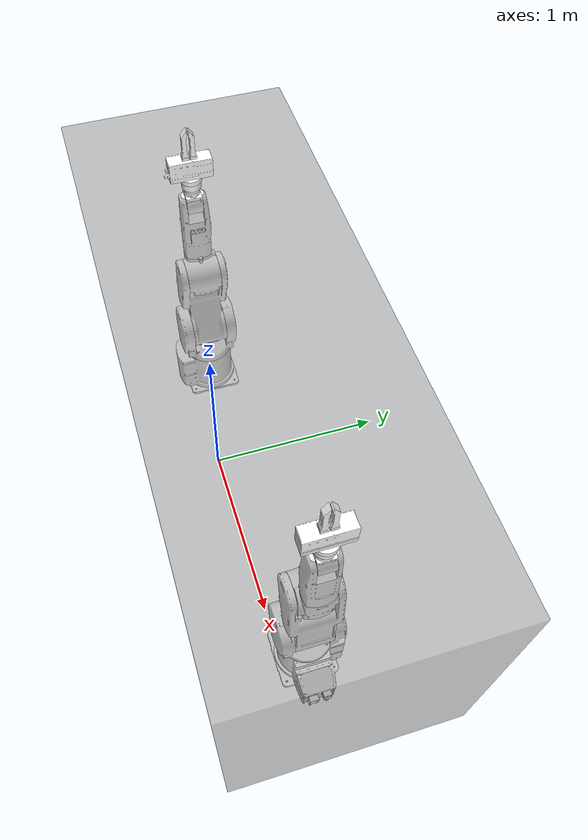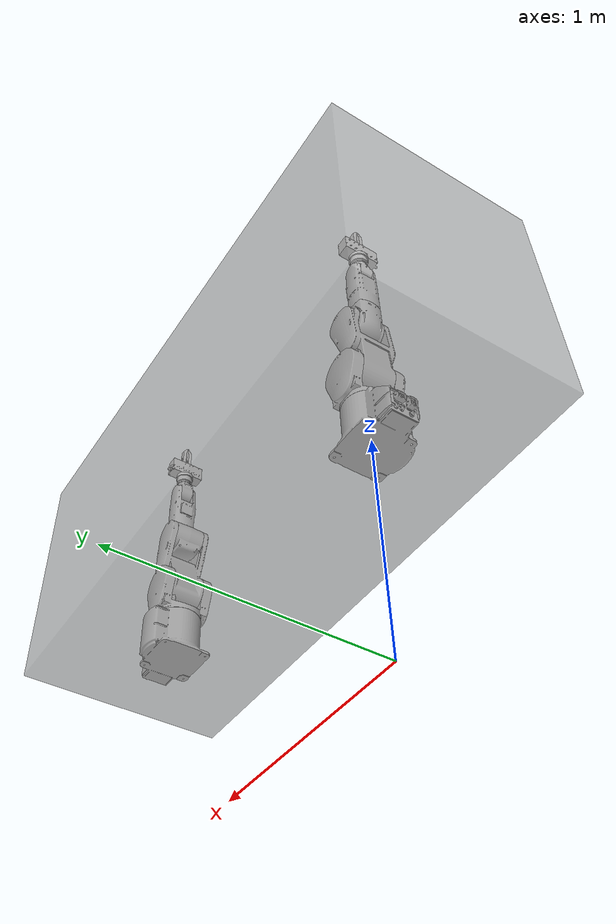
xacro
<?xml version="1.0" encoding="utf-8"?>
<robot xmlns:xacro="http://www.ros.org/wiki/xacro" name="rv7fm">
  <xacro:arg name="use_sim" default="false" />

  <!-- Enable setting arguments from the launch file -->
  <xacro:arg name="use_fake_hardware" default="false" />
  <xacro:arg name="fake_sensor_commands" default="false" />
  <xacro:arg name="prefix_1" default="melfa_1" /> <!-- Name of this rv7fm -->
  <xacro:arg name="prefix_2" default="melfa_2" /> <!-- Name of this rv7fm -->
  <xacro:arg name="slowdown" default="2.0" />
  <xacro:arg name="robot_ip_1" default="127.0.0.1" />
  <xacro:arg name="robot_ip_2" default="127.0.0.1" />
  <xacro:arg name="gripper_ip" default="127.0.0.1" />
  <xacro:arg name="hand" default="true" />
  <xacro:arg name="attached_object" default="true" />

  <material name="white">
    <color rgba="1.0 1.0 1.0 1.0" />
  </material>

  <material name="transparent">
    <color rgba="0.5 0.5 0.5 0.5" />
  </material>

  <xacro:include filename="$(find rv7fm_description)/urdf/rv7fm.xacro" />
  <xacro:include filename="$(find rv7fm_description)/urdf/hand.xacro" />
  <xacro:include filename="$(find rv7fm_description)/urdf/attached_object.xacro" />

  <!-- Import RV7FM ros2_control description -->
  <xacro:include filename="$(find rv7fm_description)/ros2_control/rv7fm_system_position_only.ros2_control.xacro" />
  <xacro:include filename="$(find rv7fm_description)/ros2_control/gripper_system_multi_interface.ros2_control.xacro" />

  <link name="base_link">
    <visual>
      <origin xyz="0 0 0.9445" rpy="0 0 0" />
      <geometry>
        <mesh filename="package://rv7fm_description/meshes/rv7fm/visual/cell_assembly.stl" />
      </geometry>
      <material name="transparent" />
    </visual>
    <collision>
      <origin xyz="0 0 0.9445" rpy="0 0 0" />
      <geometry>
        <mesh filename="package://rv7fm_description/meshes/rv7fm/collision/cell_assembly.stl" />
      </geometry>
      <material name="transparent" />
    </collision>
  </link>

  <!-- left arm with gripper -->
  <xacro:rv7fm arm_id="$(arg prefix_1)" connected_to="base_link" xyz="0 0 0.9445" safety_distance="0.03" />
  <xacro:hand ns="$(arg prefix_1)" rpy="0 0 0" connected_to="$(arg prefix_1)_link6" safety_distance="0.03" />

  <!-- right arm with gripper -->
  <xacro:rv7fm arm_id="$(arg prefix_2)" connected_to="base_link" xyz="1.540 0 0.9445" rpy="0 0 ${pi}" safety_distance="0.03" />
  <xacro:hand ns="$(arg prefix_2)" rpy="0 0 0" connected_to="$(arg prefix_2)_link6" safety_distance="0.03" />
  <xacro:unless value="$(arg attached_object)">
    <xacro:attached_object ns="$(arg prefix_2)" xyz="-0.22 0 0.1" rpy="1.5707963 0 0" connected_to="$(arg prefix_2)_gripper_tcp" />
  </xacro:unless>

  <xacro:rv7fm_system_position_only name="$(arg prefix_1)_RV7FMSystemPositionOnly" prefix="$(arg prefix_1)" use_fake_hardware="$(arg use_fake_hardware)" fake_sensor_commands="$(arg fake_sensor_commands)" slowdown="$(arg slowdown)" robot_ip="$(arg robot_ip_1)" />
  <xacro:rv7fm_system_position_only name="$(arg prefix_2)_RV7FMSystemPositionOnly" prefix="$(arg prefix_2)" use_fake_hardware="$(arg use_fake_hardware)" fake_sensor_commands="$(arg fake_sensor_commands)" slowdown="$(arg slowdown)" robot_ip="$(arg robot_ip_2)" />
  <xacro:gripper_system_multi_interface name="GripperSystemMultiInterface" prefix="$(arg prefix_1)" prefix_2="$(arg prefix_2)" use_fake_hardware="$(arg use_fake_hardware)" fake_sensor_commands="$(arg fake_sensor_commands)" slowdown="$(arg slowdown)" gripper_ip="$(arg gripper_ip)" />
</robot>

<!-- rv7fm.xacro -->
<!-- Copyright (C) 2021, Laboratory for Machine Tools and Production Engineering WZL -->
<robot xmlns:xacro="http://www.ros.org/wiki/xacro">
  <xacro:macro name="rv7fm" params="arm_id description_pkg:='rv7fm_description' connected_to:=^|'' xyz:=^|'0 0 0' rpy:=^|'0 0 0' safety_distance:=^|0">
    <xacro:unless value="${not connected_to}">
      <joint name="${arm_id}_joint_${connected_to}" type="fixed">
        <parent link="${connected_to}" />
        <child link="${arm_id}_link0" />
        <origin rpy="${rpy}" xyz="${xyz}" />
      </joint>
    </xacro:unless>
    <link name="${arm_id}_link0">
      <visual>
        <origin rpy="0 0 0" xyz="0 0 0" />
        <geometry>
          <mesh filename="package://rv7fm_description/meshes/rv7fm/visual/L0.stl" />
        </geometry>
        <material name="white" />
      </visual>
      <collision>
        <origin rpy="0 0 0" xyz="0 0 0" />
        <geometry>
          <mesh filename="package://rv7fm_description/meshes/rv7fm/collision/L0.stl" />
        </geometry>
      </collision>
    </link>

    <joint name="${arm_id}_joint1" type="revolute">
      <parent link="${arm_id}_link0" />
      <child link="${arm_id}_link1" />
      <origin xyz="0 0 0.4" rpy="0 0 0" />
      <axis xyz="0 0 1" />
      <dynamics damping="0.7" />
      <limit upper="${240*pi/180}" lower="${-240*pi/180}" effort="10" velocity="${360*pi*0.1/180}" />
    </joint>

    <link name="${arm_id}_link1">
      <visual>
        <origin rpy="0 0 0" xyz="0 0 0" />
        <geometry>
          <mesh filename="package://rv7fm_description/meshes/rv7fm/visual/L1.stl" />
        </geometry>
        <material name="white" />
      </visual>
      <collision>
        <origin rpy="0 0 0" xyz="0 0 0" />
        <geometry>
          <mesh filename="package://rv7fm_description/meshes/rv7fm/collision/L1.stl" />
        </geometry>
      </collision>
    </link>

    <joint name="${arm_id}_joint2" type="revolute">
      <parent link="${arm_id}_link1" />
      <child link="${arm_id}_link2" />
      <origin xyz="0 0 0" rpy="0 0 0" />
      <axis xyz="0 1 0" />
      <dynamics damping="0.7" />
      <limit upper="${125*pi/180}" lower="${-115*pi/180}" effort="10" velocity="${401*pi*0.1/180}" />
    </joint>

    <link name="${arm_id}_link2">
      <visual>
        <origin rpy="0 0 0" xyz="0 0 0" />
        <geometry>
          <mesh filename="package://rv7fm_description/meshes/rv7fm/visual/L2.stl" />
        </geometry>
        <material name="white" />
      </visual>
      <collision>
        <origin rpy="0 0 0" xyz="0 0 0" />
        <geometry>
          <mesh filename="package://rv7fm_description/meshes/rv7fm/collision/L2.stl" />
        </geometry>
      </collision>
    </link>

    <joint name="${arm_id}_joint3" type="revolute">
      <parent link="${arm_id}_link2" />
      <child link="${arm_id}_link3" />
      <origin xyz="0 0 0.340" rpy="0 0 0" />
      <axis xyz="0 1 0" />
      <dynamics damping="0.7" />
      <limit upper="${156*pi/180}" lower="0.00" effort="10" velocity="${450*pi*0.05/180}" />
    </joint>

    <link name="${arm_id}_link3">
      <visual>
        <origin rpy="0 0 0" xyz="0 0 0" />
        <geometry>
          <mesh filename="package://rv7fm_description/meshes/rv7fm/visual/L3.stl" />
        </geometry>
        <material name="white" />
      </visual>
      <collision>
        <origin rpy="0 0 0" xyz="0 0 0" />
        <geometry>
          <mesh filename="package://rv7fm_description/meshes/rv7fm/collision/L3.stl" />
        </geometry>
      </collision>
    </link>

    <joint name="${arm_id}_joint4" type="revolute">
      <parent link="${arm_id}_link3" />
      <child link="${arm_id}_link4" />
      <origin xyz="-0.05 0 0.37" rpy="0 0 0" />
      <axis xyz="0 0 1" />
      <dynamics damping="0.7" />
      <limit upper="${200*pi/180}" lower="${-200*pi/180}" effort="10" velocity="${337*pi*0.1/180}" />
    </joint>

    <link name="${arm_id}_link4">
      <visual>
        <origin rpy="0 0 0" xyz="0 0 0" />
        <geometry>
          <mesh filename="package://rv7fm_description/meshes/rv7fm/visual/L4.stl" />
        </geometry>
        <material name="white" />
      </visual>
      <collision>
        <origin rpy="0 0 0" xyz="0 0 0" />
        <geometry>
          <mesh filename="package://rv7fm_description/meshes/rv7fm/collision/L4.stl" />
        </geometry>
      </collision>
    </link>

    <joint name="${arm_id}_joint5" type="revolute">
      <parent link="${arm_id}_link4" />
      <child link="${arm_id}_link5" />
      <origin xyz="0 0 0" rpy="0 0 0" />
      <axis xyz="0 1 0" />
      <dynamics damping="0.7" />
      <limit upper="${120*pi/180}" lower="${-120*pi/180}" effort="10" velocity="${450*pi*0.05/180}" />
    </joint>

    <link name="${arm_id}_link5">
      <visual>
        <origin rpy="0 0 0" xyz="0 0 0" />
        <geometry>
          <mesh filename="package://rv7fm_description/meshes/rv7fm/visual/L5.stl" />
        </geometry>
        <material name="white" />
      </visual>
      <collision>
        <origin rpy="0 0 0" xyz="0 0 0" />
        <geometry>
          <mesh filename="package://rv7fm_description/meshes/rv7fm/collision/L5.stl" />
        </geometry>
      </collision>
    </link>

    <joint name="${arm_id}_joint6" type="revolute">
      <parent link="${arm_id}_link5" />
      <child link="${arm_id}_link6" />
      <origin xyz="0 0 0.085" rpy="0 0 0" />
      <axis xyz="0 0 1" />
      <dynamics damping="0.7" />
      <limit upper="${185*pi/180}" lower="${-185*pi/180}" effort="10" velocity="${720*pi*0.01/180}" />
    </joint>

    <link name="${arm_id}_link6">
      <visual>
        <origin rpy="0 0 0" xyz="0 0 0" />
        <geometry>
          <mesh filename="package://rv7fm_description/meshes/rv7fm/visual/L6.stl" />
        </geometry>
        <material name="white" />
      </visual>
      <collision>
        <origin rpy="0 0 0" xyz="0 0 0" />
        <geometry>
          <mesh filename="package://rv7fm_description/meshes/rv7fm/collision/L6.stl" />
        </geometry>
      </collision>
    </link>
  </xacro:macro>
</robot>

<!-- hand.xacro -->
<robot xmlns:xacro="http://www.ros.org/wiki/xacro" name="hand">
  <!-- safety_distance: Minimum safety distance in [m] by which the collision volumes are expanded and which is enforced during robot motions -->
  <xacro:macro name="hand" params="connected_to:='' ns:='' rpy:='0 0 0' xyz:='0 0 0' safety_distance:=0">
    <xacro:unless value="${connected_to == ''}">
      <joint name="${ns}_hand_joint" type="fixed">
        <parent link="${connected_to}" />
        <child link="${ns}_ft_sensor_link" />
        <origin xyz="${xyz}" rpy="${rpy}" />
      </joint>
    </xacro:unless>
    <link name="${ns}_ft_sensor_link">
      <visual>
        <geometry>
          <mesh filename="package://rv7fm_description/meshes/rv7fm/visual/ft-sensor.stl" />
        </geometry>
        <material name="white" />
      </visual>
      <collision>
        <origin xyz="0 0 0.01625" rpy="0 0 0" />
        <geometry>
          <cylinder radius="${0.045+safety_distance}" length="0.0325" />
        </geometry>
      </collision>
    </link>

    <joint name="${ns}_ft_sensor_bracket_joint" type="fixed">
      <origin xyz="0 0 0.0325" rpy="0 0 0" />
      <parent link="${ns}_ft_sensor_link" />
      <child link="${ns}_bracket_link" />
    </joint>

    <link name="${ns}_bracket_link">
      <visual>
        <geometry>
          <mesh filename="package://rv7fm_description/meshes/rv7fm/visual/bracket.stl" />
        </geometry>
        <material name="white" />
      </visual>
      <collision>
        <origin xyz="0 0 0.01" rpy="0 0 0" />
        <geometry>
          <cylinder radius="${0.05+safety_distance}" length="0.02" />
        </geometry>
      </collision>
    </link>

    <joint name="${ns}_bracket_gripper_joint" type="fixed">
      <origin xyz="0 0 0.02" rpy="0 0 0" />
      <parent link="${ns}_bracket_link" />
      <child link="${ns}_gripper_link" />
    </joint>

    <link name="${ns}_gripper_link">
      <visual>
        <geometry>
          <mesh filename="package://rv7fm_description/meshes/rv7fm/visual/schunk-gripper.stl" />
        </geometry>
        <material name="white" />
      </visual>
      <collision>
        <origin xyz="0 0 0.0425" rpy="0 0 0" />
        <geometry>
          <box size="${0.07+safety_distance} ${0.216+safety_distance} 0.085" />
        </geometry>
      </collision>
    </link>

    <link name="${ns}_gripper_tcp" />
    <joint name="${ns}_gripper_tcp_joint" type="fixed">
      <origin xyz="0 0 0.085" rpy="0 0 0" />
      <parent link="${ns}_gripper_link" />
      <child link="${ns}_gripper_tcp" />
    </joint>

    <link name="${ns}_leftfinger">
      <visual>
        <origin xyz="0 0 0" rpy="0 0 0" />
        <geometry>
          <mesh filename="package://rv7fm_description/meshes/rv7fm/visual/schunk-finger.stl" />
        </geometry>
        <material name="white" />
      </visual>
      <collision>
        <origin xyz="0 0.015 0.0065" rpy="0 0 0" />
        <geometry>
          <box size="0.03 0.03 0.013" />
        </geometry>
      </collision>
    </link>
    <link name="${ns}_rightfinger">
      <visual>
        <origin xyz="0 0 0" rpy="0 0 ${pi}" />
        <geometry>
          <mesh filename="package://rv7fm_description/meshes/rv7fm/visual/schunk-finger.stl" />
        </geometry>
        <material name="white" />
      </visual>
      <collision>
        <origin xyz="0 -0.015 0.0065" rpy="0 0 0" />
        <geometry>
          <box size="0.03 0.03 0.013" />
        </geometry>
      </collision>
    </link>
    <joint name="${ns}_finger_joint1" type="prismatic">
      <parent link="${ns}_gripper_tcp" />
      <child link="${ns}_leftfinger" />
      <origin xyz="0 0 0" rpy="0 0 0" />
      <axis xyz="0 1 0" />
      <limit effort="20" lower="0.0" upper="0.0575" velocity="0.2" />
    </joint>
    <joint name="${ns}_finger_joint2" type="prismatic">
      <parent link="${ns}_gripper_tcp" />
      <child link="${ns}_rightfinger" />
      <origin xyz="0 0 0" rpy="0 0 0" />
      <axis xyz="0 -1 0" />
      <limit effort="20" lower="0.0" upper="0.0575" velocity="0.2" />
      <mimic joint="${ns}_finger_joint1" />
    </joint>
    <link name="${ns}_lefttip">
      <visual>
        <origin xyz="0 0.0035 0" rpy="0 0 0" />
        <geometry>
          <mesh filename="package://rv7fm_description/meshes/rv7fm/visual/finger_tip.stl" />
        </geometry>
        <material name="white" />
      </visual>
      <collision>
        <origin xyz="0 0.0175 -0.06" rpy="0 0 0" />
        <geometry>
          <box size="0.03 0.025 0.12" />
        </geometry>
      </collision>
    </link>
    <link name="${ns}_righttip">
      <visual>
        <origin xyz="0 -0.0035 0" rpy="0 0 ${pi}" />
        <geometry>
          <mesh filename="package://rv7fm_description/meshes/rv7fm/visual/finger_tip.stl" />
        </geometry>
        <material name="white" />
      </visual>
      <collision>
        <origin xyz="0 -0.0175 -0.06" rpy="0 0 0" />
        <geometry>
          <box size="0.03 0.025 0.12" />
        </geometry>
      </collision>
    </link>
    <joint name="${ns}_fingertip_joint1" type="fixed">
      <parent link="${ns}_leftfinger" />
      <child link="${ns}_lefttip" />
      <origin xyz="0 0 0.1325" rpy="0 0 0" />
    </joint>
    <joint name="${ns}_fingertip_joint2" type="fixed">
      <parent link="${ns}_rightfinger" />
      <child link="${ns}_righttip" />
      <origin xyz="0 0 0.1325" rpy="0 0 0" />
    </joint>
  </xacro:macro>
</robot>
